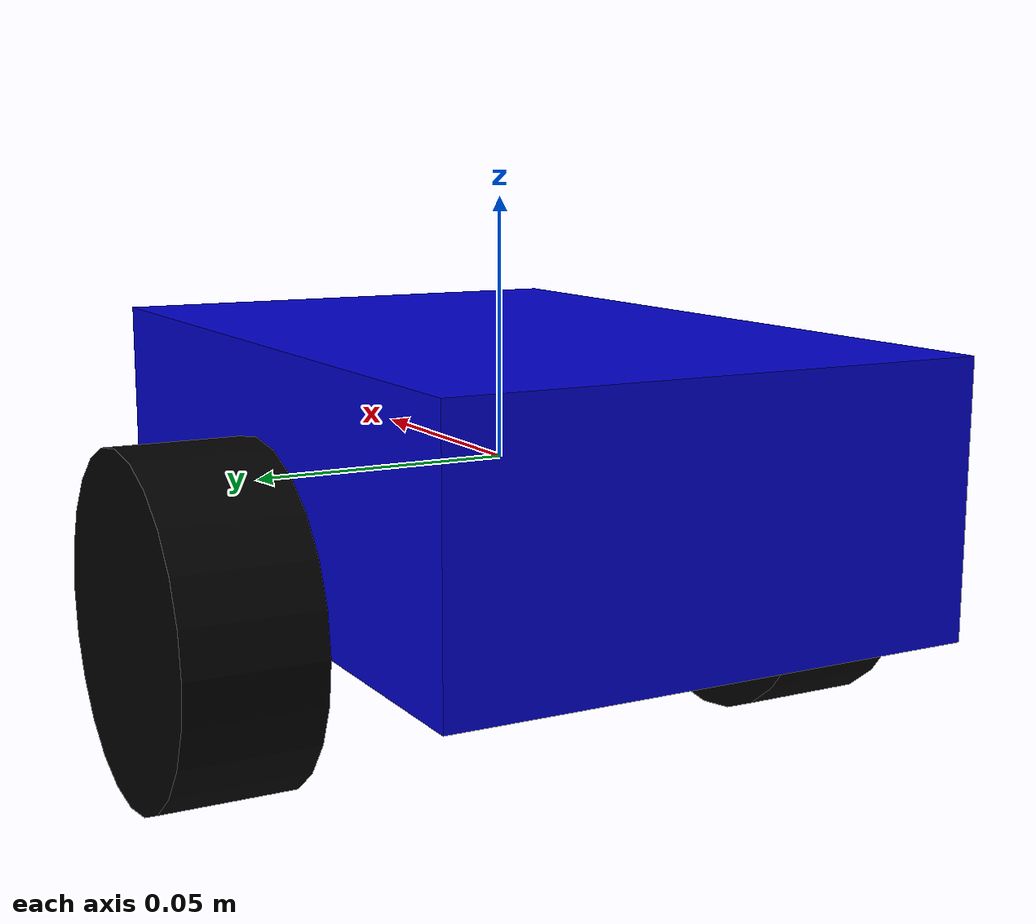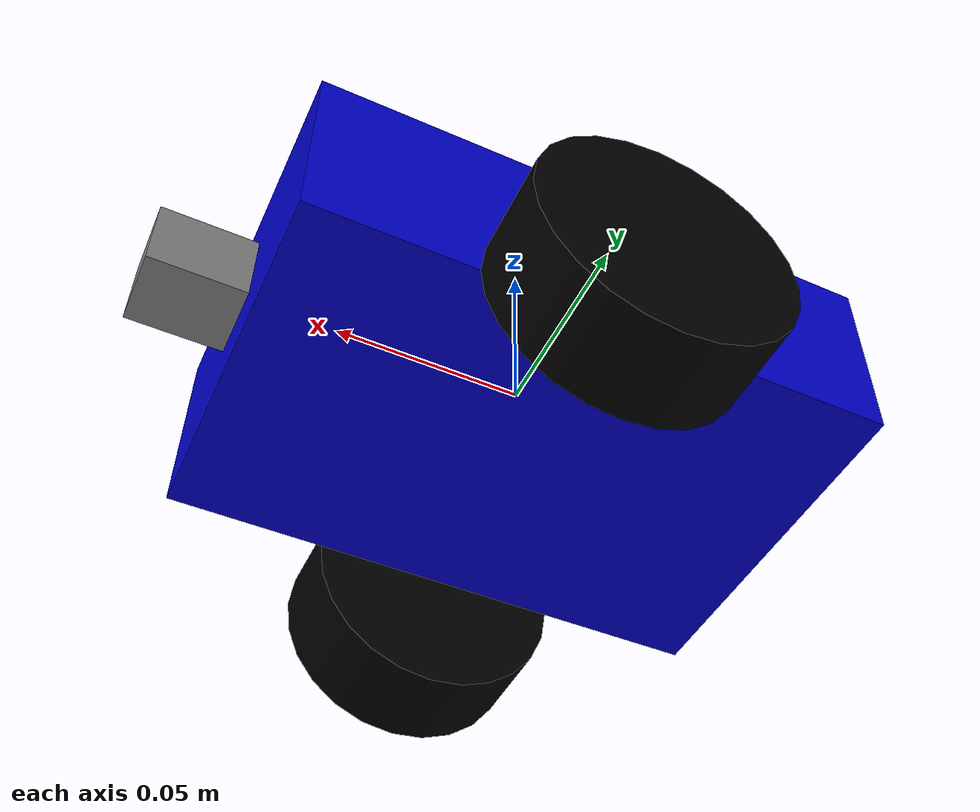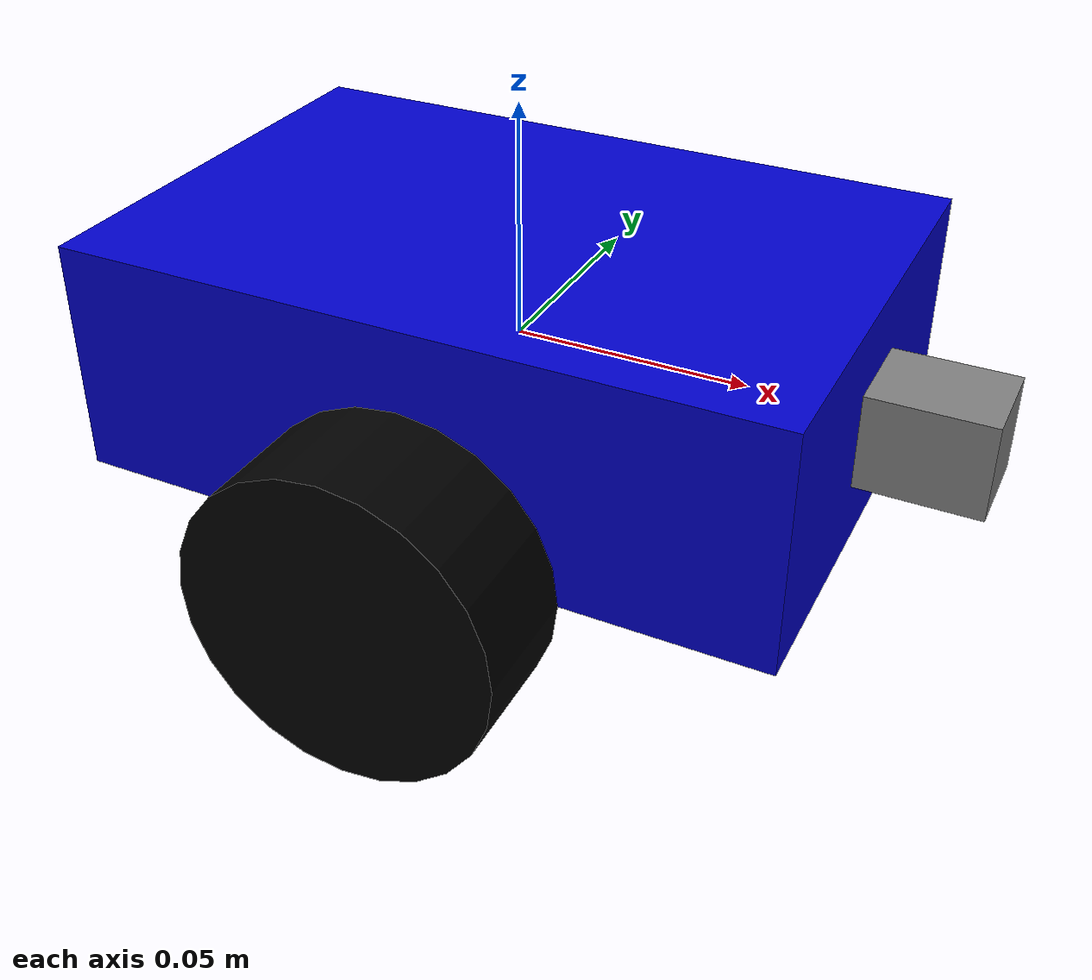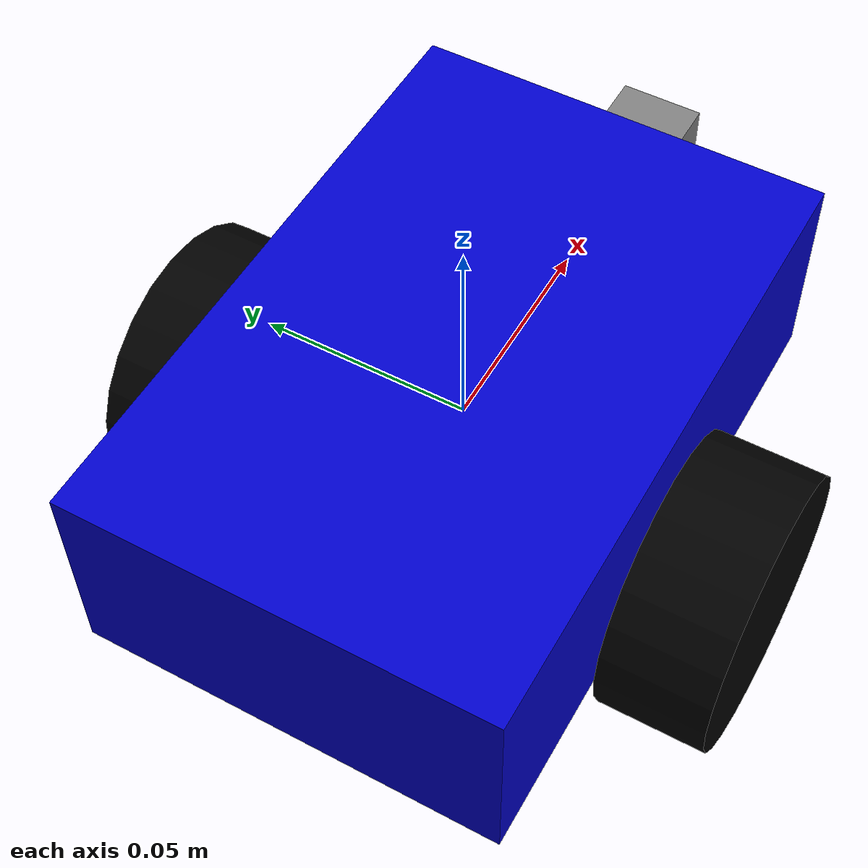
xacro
<?xml version="1.0"?>
<robot xmlns:xacro="http://www.ros.org/wiki/xacro" name="robot_hat_robot">

  <!-- Included URDF Files -->
  <xacro:include filename="inertial_macros.xacro" />

  <!-- Namespace Property -->
  <xacro:property name="namespace" value="robot_hat_interface"/>

  <!-- Constants -->
  <xacro:property name="wheel_radius" value="0.033" />
  <xacro:property name="wheel_width" value="0.026" />
  <xacro:property name="chassis_length" value="0.15" />
  <xacro:property name="chassis_width" value="0.1" />
  <xacro:property name="chassis_height" value="0.05" />
  <xacro:property name="servo_link_length" value="0.05" />

  <!-- Chassis -->
  <link name="${namespace}/base_link">
    <visual>
      <geometry>
        <box size="${chassis_length} ${chassis_width} ${chassis_height}"/>
      </geometry>
      <material name="blue">
        <color rgba="0 0 0.8 1"/>
      </material>
    </visual>
    <collision>
      <geometry>
        <box size="${chassis_length} ${chassis_width} ${chassis_height}"/>
      </geometry>
    </collision>
    <inertial>
      <mass value="0.5"/>
      <inertia ixx="0.001" ixy="0.0" ixz="0.0"
               iyy="0.001" iyz="0.0"
               izz="0.001"/>
    </inertial>
  </link>

  <!-- Left Wheel -->
  <link name="${namespace}/left_wheel">
    <visual>
      <geometry>
        <cylinder radius="${wheel_radius}" length="${wheel_width}"/>
      </geometry>
      <material name="black">
        <color rgba="0 0 0 1"/>
      </material>
    </visual>
    <collision>
      <geometry>
        <cylinder radius="${wheel_radius}" length="${wheel_width}"/>
      </geometry>
    </collision>
    <inertial>
      <mass value="0.1"/>
      <inertia ixx="0.0001" ixy="0.0" ixz="0.0"
               iyy="0.0001" iyz="0.0"
               izz="0.0001"/>
    </inertial>
  </link>

  <joint name="${namespace}/left_wheel_joint" type="continuous">
    <parent link="${namespace}/base_link"/>
    <child link="${namespace}/left_wheel"/>
    <origin xyz="0 ${chassis_width/2 + wheel_width/2} ${-chassis_height/2}" rpy="0 1.5707 1.5707"/>
    <axis xyz="0 1 0"/>
  </joint>

  <!-- Right Wheel -->
  <link name="${namespace}/right_wheel">
    <visual>
      <geometry>
        <cylinder radius="${wheel_radius}" length="${wheel_width}"/>
      </geometry>
      <material name="black"/>
    </visual>
    <collision>
      <geometry>
        <cylinder radius="${wheel_radius}" length="${wheel_width}"/>
      </geometry>
    </collision>
    <inertial>
      <mass value="0.1"/>
      <inertia ixx="0.0001" ixy="0.0" ixz="0.0"
               iyy="0.0001" iyz="0.0"
               izz="0.0001"/>
    </inertial>
  </link>

  <joint name="${namespace}/right_wheel_joint" type="continuous">
    <parent link="${namespace}/base_link"/>
    <child link="${namespace}/right_wheel"/>
    <origin xyz="0 ${-chassis_width/2 - wheel_width/2} ${-chassis_height/2}" rpy="0 1.5707 1.5707"/>
    <axis xyz="0 1 0"/>
  </joint>

  <!-- Steering Servo Link -->
  <link name="${namespace}/steering_servo_link">
    <visual>
      <geometry>
        <box size="${servo_link_length} 0.02 0.02"/>
      </geometry>
      <material name="grey">
        <color rgba="0.5 0.5 0.5 1"/>
      </material>
    </visual>
    <collision>
      <geometry>
        <box size="${servo_link_length} 0.02 0.02"/>
      </geometry>
    </collision>
    <inertial>
      <mass value="0.05"/>
      <inertia ixx="0.00005" ixy="0.0" ixz="0.0"
               iyy="0.00005" iyz="0.0"
               izz="0.00005"/>
    </inertial>
  </link>

  <joint name="${namespace}/steering_servo_joint" type="revolute">
    <parent link="${namespace}/base_link"/>
    <child link="${namespace}/steering_servo_link"/>
    <origin xyz="${chassis_length/2} 0 0" rpy="0 0 0"/>
    <axis xyz="0 0 1"/>
    <limit lower="-1.57" upper="1.57" effort="1" velocity="1"/>
  </joint>

  <!-- ROS2 Control Tag -->
  <ros2_control name="RobotHatHardware" type="system">
    <hardware>
      <plugin>robot_hat_interface/RobotHatHardware</plugin>
    </hardware>
    <joint name="${namespace}/left_wheel_joint">
      <command_interface name="velocity"/>
      <state_interface name="position"/>
      <state_interface name="velocity"/>
    </joint>
    <joint name="${namespace}/right_wheel_joint">
      <command_interface name="velocity"/>
      <state_interface name="position"/>
      <state_interface name="velocity"/>
    </joint>
    <joint name="${namespace}/steering_servo_joint">
      <command_interface name="position"/>
      <state_interface name="position"/>
      <state_interface name="velocity"/>
    </joint>
  </ros2_control>

</robot>
